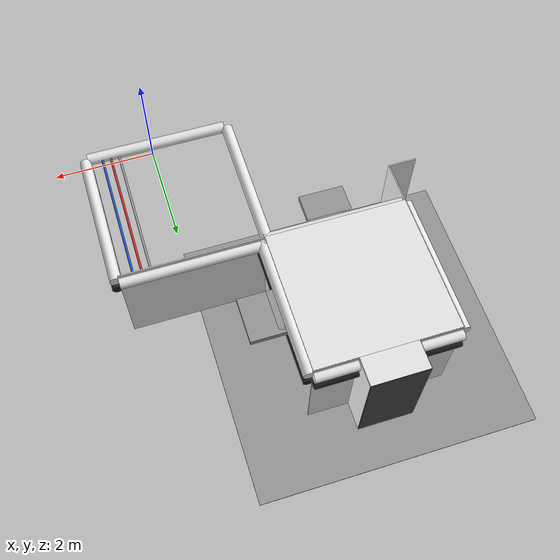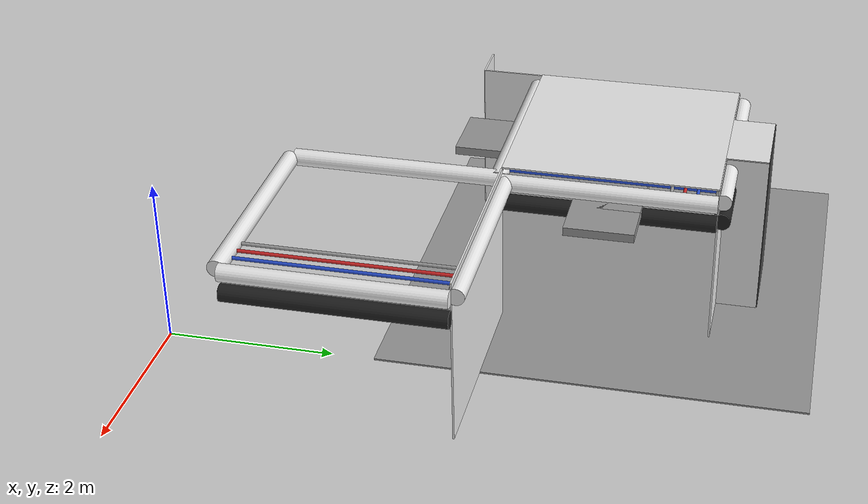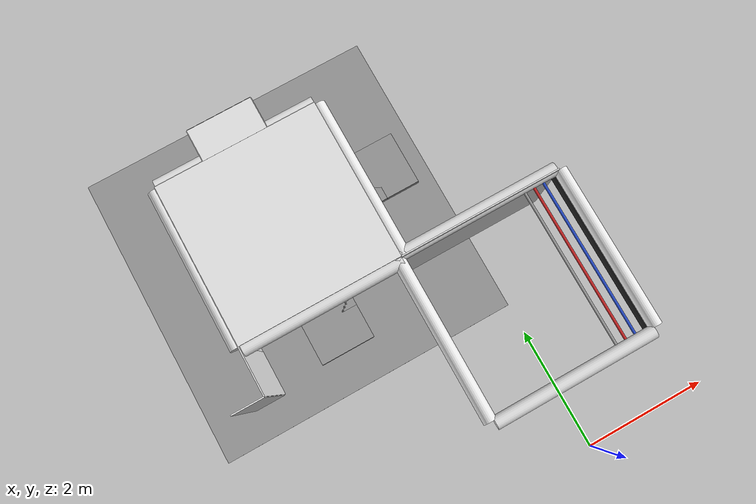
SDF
<sdf version="1.6">
 <world name="default">
  <model name="wall_front_0_1_0_3">
   <static>1</static>
   <pose>0.0 3.75 1.0 0.0 0.0 0.0</pose>
   <link name="link">
    <collision name="collision"><geometry><box><size>2.5 0.02 2.0</size></box></geometry></collision>
    <visual name="visual">
     <material>
      <script><name>Gazebo/White</name><uri>file://media/materials/scripts/gazebo.material</uri></script>
     </material>
     <geometry><box><size>2.5 0.02 2.0</size></box></geometry>
    </visual>
   </link>
  </model>
  <model name="white_pipe_left_0_1_0_3">
   <static>1</static>
   <pose>0.0 2.5 1.84 0.0 0.0 0.0</pose>
   <link name="link_0">
    <visual name="visual">
     <pose>-1.3 0 0 1.57 0 0</pose>
     <geometry><cylinder><radius>0.1</radius><length>2.5</length></cylinder></geometry>
     <material>
      <script><uri>file://media/materials/scripts/gazebo.material</uri><name>Gazebo/White</name></script>
     </material>
    </visual>
    <collision name="collision">
     <pose>-1.3 0 0 1.57 0 0</pose>
     <geometry><cylinder><radius>0.1</radius><length>2.5</length></cylinder></geometry>
    </collision>
   </link>
  </model>
  <model name="white_pipe_right_0_1_0_3">
   <static>1</static>
   <pose>0.0 2.5 1.84 0.0 0.0 0.0</pose>
   <link name="link_0">
    <visual name="visual">
     <pose>1.3 0 0 1.57 0 0</pose>
     <geometry><cylinder><radius>0.1</radius><length>2.5</length></cylinder></geometry>
     <material>
      <script><uri>file://media/materials/scripts/gazebo.material</uri><name>Gazebo/White</name></script>
     </material>
    </visual>
    <collision name="collision">
     <pose>1.3 0 0 1.57 0 0</pose>
     <geometry><cylinder><radius>0.1</radius><length>2.5</length></cylinder></geometry>
    </collision>
   </link>
  </model>
  <model name="black_pipe_right_0_1_0_3">
   <static>1</static>
   <pose>0.0 2.5 1.84 0.0 0.0 0.0</pose>
   <link name="link_0">
    <visual name="visual">
     <pose>1.3 0 -0.25 1.57 0 0</pose>
     <geometry><cylinder><radius>0.1</radius><length>2.5</length></cylinder></geometry>
     <material>
      <script><uri>file://media/materials/scripts/gazebo.material</uri><name>Gazebo/Black</name></script>
     </material>
    </visual>
    <collision name="collision">
     <pose>1.3 0 -0.25 1.57 0 0</pose>
     <geometry><cylinder><radius>0.1</radius><length>2.5</length></cylinder></geometry>
    </collision>
   </link>
  </model>
  <model name="grey_pipe_right_0_1_0_3">
   <static>1</static>
   <pose>0.0 2.5 1.84 0.0 0.0 0.0</pose>
   <link name="link_0">
    <visual name="visual">
     <pose>0.7 0 0 1.57 0 0</pose>
     <geometry><cylinder><radius>0.02</radius><length>2.5</length></cylinder></geometry>
     <material>
      <script><uri>file://media/materials/scripts/gazebo.material</uri><name>Gazebo/Grey</name></script>
     </material>
    </visual>
    <collision name="collision">
     <pose>0.7 0 0 1.57 0 0</pose>
     <geometry><cylinder><radius>0.02</radius><length>2.5</length></cylinder></geometry>
    </collision>
   </link>
  </model>
  <model name="red_pipe_right_0_1_0_3">
   <static>1</static>
   <pose>0.0 2.5 1.84 0.0 0.0 0.0</pose>
   <link name="link_0">
    <visual name="visual">
     <pose>0.85 0 0 1.57 0 0</pose>
     <geometry><cylinder><radius>0.02</radius><length>2.5</length></cylinder></geometry>
     <material>
      <script><uri>file://media/materials/scripts/gazebo.material</uri><name>Gazebo/Red</name></script>
     </material>
    </visual>
    <collision name="collision">
     <pose>0.85 0 0 1.57 0 0</pose>
     <geometry><cylinder><radius>0.02</radius><length>2.5</length></cylinder></geometry>
    </collision>
   </link>
  </model>
  <model name="blue_pipe_right_0_1_0_3">
   <static>1</static>
   <pose>0.0 2.5 1.84 0.0 0.0 0.0</pose>
   <link name="link_0">
    <visual name="visual">
     <pose>1 0 0 1.57 0 0</pose>
     <geometry><cylinder><radius>0.02</radius><length>2.5</length></cylinder></geometry>
     <material>
      <script><uri>file://media/materials/scripts/gazebo.material</uri><name>Gazebo/Blue</name></script>
     </material>
    </visual>
    <collision name="collision">
     <pose>1 0 0 1.57 0 0</pose>
     <geometry><cylinder><radius>0.02</radius><length>2.5</length></cylinder></geometry>
    </collision>
   </link>
  </model>
  <model name="white_pipe_left_1_0_1_0_3">
   <static>1</static>
   <pose>0.0 2.5 1.84 0.0 0.0 1.57</pose>
   <link name="link_0">
    <visual name="visual">
     <pose>-1.3 0 0 1.57 0 0</pose>
     <geometry><cylinder><radius>0.1</radius><length>2.5</length></cylinder></geometry>
     <material>
      <script><uri>file://media/materials/scripts/gazebo.material</uri><name>Gazebo/White</name></script>
     </material>
    </visual>
    <collision name="collision">
     <pose>-1.3 0 0 1.57 0 0</pose>
     <geometry><cylinder><radius>0.1</radius><length>2.5</length></cylinder></geometry>
    </collision>
   </link>
  </model>
  <model name="white_pipe_right_1_0_1_0_3">
   <static>1</static>
   <pose>0.0 2.5 1.84 0.0 0.0 1.57</pose>
   <link name="link_0">
    <visual name="visual">
     <pose>1.3 0 0 1.57 0 0</pose>
     <geometry><cylinder><radius>0.1</radius><length>2.5</length></cylinder></geometry>
     <material>
      <script><uri>file://media/materials/scripts/gazebo.material</uri><name>Gazebo/White</name></script>
     </material>
    </visual>
    <collision name="collision">
     <pose>1.3 0 0 1.57 0 0</pose>
     <geometry><cylinder><radius>0.1</radius><length>2.5</length></cylinder></geometry>
    </collision>
   </link>
  </model>
  <model name="ceiling_1_-1_1_1_2">
   <pose>-2.5 3.5 1.7 0.0 0.0 3.14</pose>
   <link name="link_1">
    <visual name="visual">
     <geometry><box><size>0.8 1 0.1</size></box></geometry>
     <material>
      <script><uri>file://media/materials/scripts/gazebo.material</uri><name>Gazebo/Grey</name></script>
     </material>
    </visual>
    <collision name="collision"><geometry><box><size>0.8 1 0.1</size></box></geometry></collision>
   </link>
   <static>1</static>
  </model>
  <model name="wall_front_front_left_-1_1_0_2">
   <static>1</static>
   <pose>-3.75 3.375 1.0 0.0 0.0 1.57</pose>
   <link name="link">
    <collision name="collision"><geometry><box><size>0.75 0.02 2.0</size></box></geometry></collision>
    <visual name="visual">
     <material>
      <script><name>Gazebo/White</name><uri>file://media/materials/scripts/gazebo.material</uri></script>
     </material>
     <geometry><box><size>0.75 0.02 2.0</size></box></geometry>
    </visual>
   </link>
  </model>
  <model name="wall_front_inside_right_-1_1_0_2">
   <static>1</static>
   <pose>-4.0 3.0 1.0 0.0 0.0 3.14</pose>
   <link name="link">
    <collision name="collision"><geometry><box><size>0.5 0.02 2</size></box></geometry></collision>
    <visual name="visual">
     <material>
      <script><name>Gazebo/White</name><uri>file://media/materials/scripts/gazebo.material</uri></script>
     </material>
     <geometry><box><size>0.5 0.02 2</size></box></geometry>
    </visual>
   </link>
  </model>
  <model name="wall_left_-1_2_0_2">
   <static>1</static>
   <pose>-3.75 5.0 1.0 0.0 0.0 1.57</pose>
   <link name="link">
    <collision name="collision"><geometry><box><size>2.5 0.02 2.0</size></box></geometry></collision>
    <visual name="visual">
     <material>
      <script><name>Gazebo/White</name><uri>file://media/materials/scripts/gazebo.material</uri></script>
     </material>
     <geometry><box><size>2.5 0.02 2.0</size></box></geometry>
    </visual>
   </link>
  </model>
  <model name="wall_top_-1_2_0_2">
   <static>1</static>
   <pose>-2.5 5.0 2.0 1.57 0.0 0.0</pose>
   <link name="link">
    <collision name="collision"><geometry><box><size>2.5 0.02 2.5</size></box></geometry></collision>
    <visual name="visual">
     <material>
      <script><name>Gazebo/White</name><uri>file://media/materials/scripts/gazebo.material</uri></script>
     </material>
     <geometry><box><size>2.5 0.02 2.5</size></box></geometry>
    </visual>
   </link>
  </model>
  <model name="ceiling_1_-1_2_0_2">
   <pose>-2.5 4.0 1.7 0.0 0.0 0.0</pose>
   <link name="link_1">
    <visual name="visual">
     <geometry><box><size>0.8 1 0.1</size></box></geometry>
     <material>
      <script><uri>file://media/materials/scripts/gazebo.material</uri><name>Gazebo/Grey</name></script>
     </material>
    </visual>
    <collision name="collision"><geometry><box><size>0.8 1 0.1</size></box></geometry></collision>
   </link>
   <static>1</static>
  </model>
  <model name="ceiling_1_-1_2_1_2">
   <pose>-1.5 5.0 1.7 0.0 0.0 1.57</pose>
   <link name="link_1">
    <visual name="visual">
     <geometry><box><size>0.8 1 0.1</size></box></geometry>
     <material>
      <script><uri>file://media/materials/scripts/gazebo.material</uri><name>Gazebo/Grey</name></script>
     </material>
    </visual>
    <collision name="collision"><geometry><box><size>0.8 1 0.1</size></box></geometry></collision>
   </link>
   <static>1</static>
  </model>
  <model name="white_pipe_left_-1_2_0_2">
   <static>1</static>
   <pose>-2.5 5.0 1.84 0.0 0.0 0.0</pose>
   <link name="link_0">
    <visual name="visual">
     <pose>-1.3 0 0 1.57 0 0</pose>
     <geometry><cylinder><radius>0.1</radius><length>2.5</length></cylinder></geometry>
     <material>
      <script><uri>file://media/materials/scripts/gazebo.material</uri><name>Gazebo/White</name></script>
     </material>
    </visual>
    <collision name="collision">
     <pose>-1.3 0 0 1.57 0 0</pose>
     <geometry><cylinder><radius>0.1</radius><length>2.5</length></cylinder></geometry>
    </collision>
   </link>
  </model>
  <model name="white_pipe_right_-1_2_0_2">
   <static>1</static>
   <pose>-2.5 5.0 1.84 0.0 0.0 0.0</pose>
   <link name="link_0">
    <visual name="visual">
     <pose>1.3 0 0 1.57 0 0</pose>
     <geometry><cylinder><radius>0.1</radius><length>2.5</length></cylinder></geometry>
     <material>
      <script><uri>file://media/materials/scripts/gazebo.material</uri><name>Gazebo/White</name></script>
     </material>
    </visual>
    <collision name="collision">
     <pose>1.3 0 0 1.57 0 0</pose>
     <geometry><cylinder><radius>0.1</radius><length>2.5</length></cylinder></geometry>
    </collision>
   </link>
  </model>
  <model name="black_pipe_right_-1_2_0_2">
   <static>1</static>
   <pose>-2.5 5.0 1.84 0.0 0.0 0.0</pose>
   <link name="link_0">
    <visual name="visual">
     <pose>1.3 0 -0.25 1.57 0 0</pose>
     <geometry><cylinder><radius>0.1</radius><length>2.5</length></cylinder></geometry>
     <material>
      <script><uri>file://media/materials/scripts/gazebo.material</uri><name>Gazebo/Black</name></script>
     </material>
    </visual>
    <collision name="collision">
     <pose>1.3 0 -0.25 1.57 0 0</pose>
     <geometry><cylinder><radius>0.1</radius><length>2.5</length></cylinder></geometry>
    </collision>
   </link>
  </model>
  <model name="grey_pipe_right_-1_2_0_2">
   <static>1</static>
   <pose>-2.5 5.0 1.84 0.0 0.0 0.0</pose>
   <link name="link_0">
    <visual name="visual">
     <pose>0.7 0 0 1.57 0 0</pose>
     <geometry><cylinder><radius>0.02</radius><length>2.5</length></cylinder></geometry>
     <material>
      <script><uri>file://media/materials/scripts/gazebo.material</uri><name>Gazebo/Grey</name></script>
     </material>
    </visual>
    <collision name="collision">
     <pose>0.7 0 0 1.57 0 0</pose>
     <geometry><cylinder><radius>0.02</radius><length>2.5</length></cylinder></geometry>
    </collision>
   </link>
  </model>
  <model name="red_pipe_right_-1_2_0_2">
   <static>1</static>
   <pose>-2.5 5.0 1.84 0.0 0.0 0.0</pose>
   <link name="link_0">
    <visual name="visual">
     <pose>0.85 0 0 1.57 0 0</pose>
     <geometry><cylinder><radius>0.02</radius><length>2.5</length></cylinder></geometry>
     <material>
      <script><uri>file://media/materials/scripts/gazebo.material</uri><name>Gazebo/Red</name></script>
     </material>
    </visual>
    <collision name="collision">
     <pose>0.85 0 0 1.57 0 0</pose>
     <geometry><cylinder><radius>0.02</radius><length>2.5</length></cylinder></geometry>
    </collision>
   </link>
  </model>
  <model name="blue_pipe_right_-1_2_0_2">
   <static>1</static>
   <pose>-2.5 5.0 1.84 0.0 0.0 0.0</pose>
   <link name="link_0">
    <visual name="visual">
     <pose>1 0 0 1.57 0 0</pose>
     <geometry><cylinder><radius>0.02</radius><length>2.5</length></cylinder></geometry>
     <material>
      <script><uri>file://media/materials/scripts/gazebo.material</uri><name>Gazebo/Blue</name></script>
     </material>
    </visual>
    <collision name="collision">
     <pose>1 0 0 1.57 0 0</pose>
     <geometry><cylinder><radius>0.02</radius><length>2.5</length></cylinder></geometry>
    </collision>
   </link>
  </model>
  <model name="white_pipe_left_1_-1_2_0_2">
   <static>1</static>
   <pose>-2.5 5.0 1.84 0.0 0.0 1.57</pose>
   <link name="link_0">
    <visual name="visual">
     <pose>-1.3 0 0 1.57 0 0</pose>
     <geometry><cylinder><radius>0.1</radius><length>2.5</length></cylinder></geometry>
     <material>
      <script><uri>file://media/materials/scripts/gazebo.material</uri><name>Gazebo/White</name></script>
     </material>
    </visual>
    <collision name="collision">
     <pose>-1.3 0 0 1.57 0 0</pose>
     <geometry><cylinder><radius>0.1</radius><length>2.5</length></cylinder></geometry>
    </collision>
   </link>
  </model>
  <model name="white_pipe_right_1_-1_2_0_2">
   <static>1</static>
   <pose>-2.5 5.0 1.84 0.0 0.0 1.57</pose>
   <link name="link_0">
    <visual name="visual">
     <pose>1.3 0 0 1.57 0 0</pose>
     <geometry><cylinder><radius>0.1</radius><length>2.5</length></cylinder></geometry>
     <material>
      <script><uri>file://media/materials/scripts/gazebo.material</uri><name>Gazebo/White</name></script>
     </material>
    </visual>
    <collision name="collision">
     <pose>1.3 0 0 1.57 0 0</pose>
     <geometry><cylinder><radius>0.1</radius><length>2.5</length></cylinder></geometry>
    </collision>
   </link>
  </model>
  <model name="black_pipe_right_1_-1_2_0_2">
   <static>1</static>
   <pose>-2.5 5.0 1.84 0.0 0.0 1.57</pose>
   <link name="link_0">
    <visual name="visual">
     <pose>1.3 0 -0.25 1.57 0 0</pose>
     <geometry><cylinder><radius>0.1</radius><length>2.5</length></cylinder></geometry>
     <material>
      <script><uri>file://media/materials/scripts/gazebo.material</uri><name>Gazebo/Black</name></script>
     </material>
    </visual>
    <collision name="collision">
     <pose>1.3 0 -0.25 1.57 0 0</pose>
     <geometry><cylinder><radius>0.1</radius><length>2.5</length></cylinder></geometry>
    </collision>
   </link>
  </model>
  <model name="grey_pipe_right_1_-1_2_0_2">
   <static>1</static>
   <pose>-2.5 5.0 1.84 0.0 0.0 1.57</pose>
   <link name="link_0">
    <visual name="visual">
     <pose>0.7 0 0 1.57 0 0</pose>
     <geometry><cylinder><radius>0.02</radius><length>2.5</length></cylinder></geometry>
     <material>
      <script><uri>file://media/materials/scripts/gazebo.material</uri><name>Gazebo/Grey</name></script>
     </material>
    </visual>
    <collision name="collision">
     <pose>0.7 0 0 1.57 0 0</pose>
     <geometry><cylinder><radius>0.02</radius><length>2.5</length></cylinder></geometry>
    </collision>
   </link>
  </model>
  <model name="red_pipe_right_1_-1_2_0_2">
   <static>1</static>
   <pose>-2.5 5.0 1.84 0.0 0.0 1.57</pose>
   <link name="link_0">
    <visual name="visual">
     <pose>0.85 0 0 1.57 0 0</pose>
     <geometry><cylinder><radius>0.02</radius><length>2.5</length></cylinder></geometry>
     <material>
      <script><uri>file://media/materials/scripts/gazebo.material</uri><name>Gazebo/Red</name></script>
     </material>
    </visual>
    <collision name="collision">
     <pose>0.85 0 0 1.57 0 0</pose>
     <geometry><cylinder><radius>0.02</radius><length>2.5</length></cylinder></geometry>
    </collision>
   </link>
  </model>
  <model name="blue_pipe_right_1_-1_2_0_2">
   <static>1</static>
   <pose>-2.5 5.0 1.84 0.0 0.0 1.57</pose>
   <link name="link_0">
    <visual name="visual">
     <pose>1 0 0 1.57 0 0</pose>
     <geometry><cylinder><radius>0.02</radius><length>2.5</length></cylinder></geometry>
     <material>
      <script><uri>file://media/materials/scripts/gazebo.material</uri><name>Gazebo/Blue</name></script>
     </material>
    </visual>
    <collision name="collision">
     <pose>1 0 0 1.57 0 0</pose>
     <geometry><cylinder><radius>0.02</radius><length>2.5</length></cylinder></geometry>
    </collision>
   </link>
  </model>
  <model name="wall_front_front_left_-1_2_0_2">
   <static>1</static>
   <pose>-1.625 6.25 1.0 0.0 0.0 0.0</pose>
   <link name="link">
    <collision name="collision"><geometry><box><size>0.75 0.02 2.0</size></box></geometry></collision>
    <visual name="visual">
     <material>
      <script><name>Gazebo/White</name><uri>file://media/materials/scripts/gazebo.material</uri></script>
     </material>
     <geometry><box><size>0.75 0.02 2.0</size></box></geometry>
    </visual>
   </link>
  </model>
  <model name="wall_front_front_right_-1_2_0_2">
   <static>1</static>
   <pose>-3.375 6.25 1.0 0.0 0.0 0.0</pose>
   <link name="link">
    <collision name="collision"><geometry><box><size>0.75 0.02 2.0</size></box></geometry></collision>
    <visual name="visual">
     <material>
      <script><name>Gazebo/White</name><uri>file://media/materials/scripts/gazebo.material</uri></script>
     </material>
     <geometry><box><size>0.75 0.02 2.0</size></box></geometry>
    </visual>
   </link>
  </model>
  <model name="wall_front_front_up_-1_2_0_2">
   <static>1</static>
   <pose>-2.5 6.25 2.0 0.0 0.0 0.0</pose>
   <link name="link">
    <collision name="collision"><geometry><box><size>1.0 0.02 0.001</size></box></geometry></collision>
    <visual name="visual">
     <material>
      <script><name>Gazebo/White</name><uri>file://media/materials/scripts/gazebo.material</uri></script>
     </material>
     <geometry><box><size>1.0 0.02 0.001</size></box></geometry>
    </visual>
   </link>
  </model>
  <model name="wall_front_inside_back_-1_2_0_2">
   <static>1</static>
   <pose>-2.5 6.75 1.0 0.0 0.0 0.0</pose>
   <link name="link">
    <collision name="collision"><geometry><box><size>1 0.02 2</size></box></geometry></collision>
    <visual name="visual">
     <material>
      <script><name>Gazebo/DarkGrey</name><uri>file://media/materials/scripts/gazebo.material</uri></script>
     </material>
     <geometry><box><size>1 0.02 2</size></box></geometry>
    </visual>
   </link>
  </model>
  <model name="wall_front_inside_left_-1_2_0_2">
   <static>1</static>
   <pose>-3.0 6.5 1.0 0.0 0.0 1.57</pose>
   <link name="link">
    <collision name="collision"><geometry><box><size>0.5 0.02 2</size></box></geometry></collision>
    <visual name="visual">
     <material>
      <script><name>Gazebo/White</name><uri>file://media/materials/scripts/gazebo.material</uri></script>
     </material>
     <geometry><box><size>0.5 0.02 2</size></box></geometry>
    </visual>
   </link>
  </model>
  <model name="wall_front_inside_right_-1_2_0_2">
   <static>1</static>
   <pose>-2.0 6.5 1.0 0.0 0.0 1.57</pose>
   <link name="link">
    <collision name="collision"><geometry><box><size>0.5 0.02 2</size></box></geometry></collision>
    <visual name="visual">
     <material>
      <script><name>Gazebo/White</name><uri>file://media/materials/scripts/gazebo.material</uri></script>
     </material>
     <geometry><box><size>0.5 0.02 2</size></box></geometry>
    </visual>
   </link>
  </model>
  <model name="wall_front_inside_top_-1_2_0_2">
   <static>1</static>
   <pose>-2.5 6.5 2.0 1.57 0.0 0.0</pose>
   <link name="link">
    <collision name="collision"><geometry><box><size>1 0.02 0.5</size></box></geometry></collision>
    <visual name="visual">
     <material>
      <script><name>Gazebo/White</name><uri>file://media/materials/scripts/gazebo.material</uri></script>
     </material>
     <geometry><box><size>1 0.02 0.5</size></box></geometry>
    </visual>
   </link>
  </model>
  <model name="wall_bottom_-1_2_0_2">
   <static>1</static>
   <pose>-2.5 5.0 0.0 0.0 0.0 0.0</pose>
   <link name="link">
    <collision name="collision"><geometry><box><size>5.0 5.0 0.02</size></box></geometry></collision>
    <visual name="visual">
     <material>
      <script><name>Gazebo/Grey</name><uri>file://media/materials/scripts/gazebo.material</uri></script>
     </material>
     <geometry><box><size>5.0 5.0 0.02</size></box></geometry>
    </visual>
   </link>
  </model>
  <model name="ceiling_1_0_2_1_1">
   <pose>-1.0 5.0 1.7 0.0 0.0 -1.57</pose>
   <link name="link_1">
    <visual name="visual">
     <geometry><box><size>0.8 1 0.1</size></box></geometry>
     <material>
      <script><uri>file://media/materials/scripts/gazebo.material</uri><name>Gazebo/Grey</name></script>
     </material>
    </visual>
    <collision name="collision"><geometry><box><size>0.8 1 0.1</size></box></geometry></collision>
   </link>
   <static>1</static>
  </model>
 </world>
</sdf>
